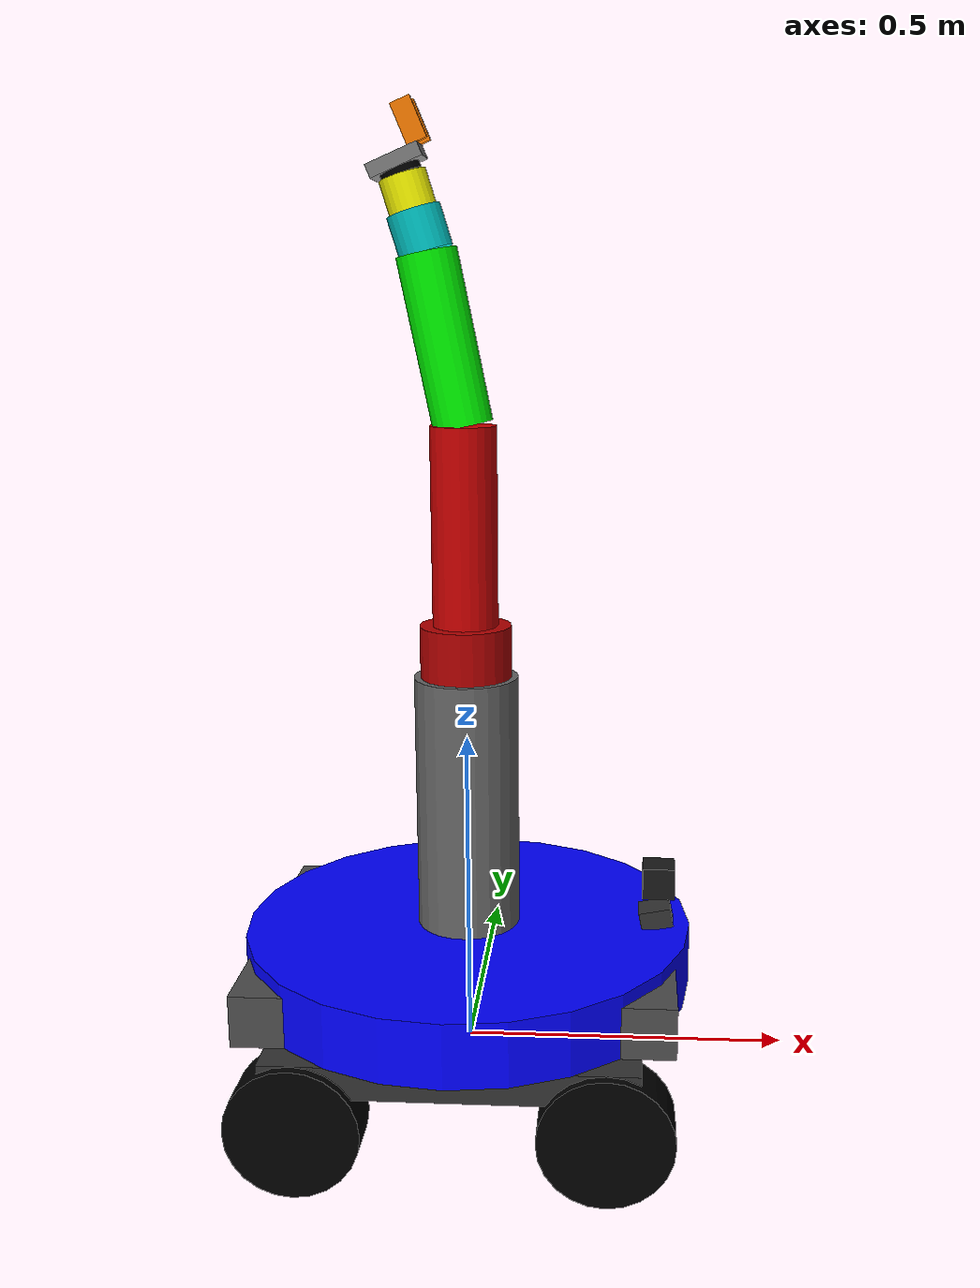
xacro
<?xml version="1.0"?>
<robot xmlns:xacro="http://ros.org/wiki/xacro" name="my_gesture_arm">
  <!-- Include the gazebo specific elements -->
  <xacro:include filename="$(find my_gesture_arm)/model/gesture_arm.gazebo" />

  <!-- Constants -->
  <xacro:property name="PI" value="3.14159"/>
  <xacro:property name="wheel_radius" value="0.1" />

  <!-- Link and Joint Macros -->
  <xacro:macro name="cylinder_link" params="name radius length xyz rpy color mass">
    <link name="${name}">
      <visual>
        <origin xyz="${xyz}" rpy="${rpy}"/>
        <geometry>
          <cylinder radius="${radius}" length="${length}"/>
        </geometry>
        <material name="">
          <color rgba="${color}"/>
        </material>
      </visual>
      <collision>
        <origin xyz="${xyz}" rpy="${rpy}"/>
        <geometry>
          <cylinder radius="${radius}" length="${length}"/>
        </geometry>
      </collision>
      <inertial>
        <origin xyz="${xyz}" rpy="${rpy}"/>
        <mass value="${mass}"/>
        <inertia
          ixx="${(1/12) * mass * (3*radius*radius + length*length)}"
          ixy="0.0"
          ixz="0.0"
          iyy="${(1/12) * mass * (3*radius*radius + length*length)}"
          iyz="0.0"
          izz="${0.5 * mass * radius * radius}"/>
      </inertial>
    </link>
  </xacro:macro>

  <xacro:macro name="box_link" params="name size xyz rpy color mass">
    <link name="${name}">
      <visual>
        <origin xyz="${xyz}" rpy="${rpy}"/>
        <geometry>
          <box size="${size}"/>
        </geometry>
        <material name="">
          <color rgba="${color}"/>
        </material>
      </visual>
      <collision>
        <origin xyz="${xyz}" rpy="${rpy}"/>
        <geometry>
          <box size="${size}"/>
        </geometry>
      </collision>
      <inertial>
        <origin xyz="${xyz}" rpy="${rpy}"/>
        <mass value="${mass}"/>
        <inertia
          ixx="${(1/12) * mass * (0.3*0.3 + 0.2*0.2)}"
          ixy="0.0"
          ixz="0.0"
          iyy="${(1/12) * mass * (0.3*0.3 + 0.2*0.2)}"
          iyz="0.0"
          izz="${(1/12) * mass * (0.3*0.3 + 0.3*0.3)}"/>
      </inertial>
    </link>
  </xacro:macro>

  <!-- Base Link -->
  <link name="base_footprint"/>

  <joint name="base_footprint_joint" type="fixed">
    <parent link="base_footprint"/>
    <child link="base_link"/>
    <origin xyz="0 0 0.1" rpy="0 0 0"/>
  </joint>

  <link name="base_link">
    <visual>
      <origin xyz="0 0 0.05" rpy="0 0 0"/>
      <geometry>
        <cylinder radius="0.35" length="0.1"/>
      </geometry>
      <material name="">
        <color rgba="0.0 0.0 1.0 1.0"/>
      </material>
    </visual>
    <collision>
      <origin xyz="0 0 0.05" rpy="0 0 0"/>
      <geometry>
        <cylinder radius="0.35" length="0.1"/>
      </geometry>
    </collision>
    <inertial>
      <origin xyz="0 0 0.05" rpy="0 0 0"/>
      <mass value="15.0"/>
      <inertia
        ixx="${(1/12) * 15.0 * (3*0.35*0.35 + 0.1*0.1)}"
        ixy="0.0"
        ixz="0.0"
        iyy="${(1/12) * 15.0 * (3*0.35*0.35 + 0.1*0.1)}"
        iyz="0.0"
        izz="${0.5 * 15.0 * 0.35 * 0.35}"/>
    </inertial>
  </link>

  <!-- Chassis -->
  <xacro:box_link name="chassis_base" size="0.65 0.5 0.08" xyz="0 0 0.04" rpy="0 0 0" color="0.3 0.3 0.3 1.0" mass="10.0"/>
  <joint name="chassis_joint" type="fixed">
    <parent link="base_link"/>
    <child link="chassis_base"/>
    <origin xyz="0 0 0" rpy="0 0 0"/>
  </joint>

  <xacro:box_link name="wheel_mount_plate" size="0.55 0.6 0.05" xyz="0 0 0.025" rpy="0 0 0" color="0.2 0.2 0.2 1.0" mass="5.0"/>
  <joint name="wheel_mount_joint" type="fixed">
    <parent link="base_link"/>
    <child link="wheel_mount_plate"/>
    <origin xyz="0 0 -0.05" rpy="0 0 0"/>
  </joint>

  <!-- Front left wheel -->
  <xacro:cylinder_link name="front_left_wheel" radius="${wheel_radius}" length="0.08" xyz="0 0 0" rpy="1.5708 0 0" color="0.0 0.0 0.0 1.0" mass="1.2"/>
  <joint name="front_left_wheel_joint" type="continuous">
    <parent link="wheel_mount_plate"/>
    <child link="front_left_wheel"/>
    <origin xyz="0.225 0.275 -0.05" rpy="0 0 0"/>
    <axis xyz="0 1 0"/>
    <dynamics damping="0.1" friction="0.1"/>
  </joint>

  <!-- Front right wheel -->
  <xacro:cylinder_link name="front_right_wheel" radius="${wheel_radius}" length="0.08" xyz="0 0 0" rpy="1.5708 0 0" color="0.0 0.0 0.0 1.0" mass="1.2"/>
  <joint name="front_right_wheel_joint" type="continuous">
    <parent link="wheel_mount_plate"/>
    <child link="front_right_wheel"/>
    <origin xyz="0.225 -0.275 -0.05" rpy="0 0 0"/>
    <axis xyz="0 1 0"/>
    <dynamics damping="0.1" friction="0.1"/>
  </joint>

  <!-- Rear left wheel -->
  <xacro:cylinder_link name="rear_left_wheel" radius="${wheel_radius}" length="0.08" xyz="0 0 0" rpy="1.5708 0 0" color="0.0 0.0 0.0 1.0" mass="1.2"/>
  <joint name="rear_left_wheel_joint" type="continuous">
    <parent link="wheel_mount_plate"/>
    <child link="rear_left_wheel"/>
    <origin xyz="-0.225 0.275 -0.05" rpy="0 0 0"/>
    <axis xyz="0 1 0"/>
    <dynamics damping="0.1" friction="0.1"/>
  </joint>

  <!-- Rear right wheel -->
  <xacro:cylinder_link name="rear_right_wheel" radius="${wheel_radius}" length="0.08" xyz="0 0 0" rpy="1.5708 0 0" color="0.0 0.0 0.0 1.0" mass="1.2"/>
  <joint name="rear_right_wheel_joint" type="continuous">
    <parent link="wheel_mount_plate"/>
    <child link="rear_right_wheel"/>
    <origin xyz="-0.225 -0.275 -0.05" rpy="0 0 0"/>
    <axis xyz="0 1 0"/>
    <dynamics damping="0.1" friction="0.1"/>
  </joint>

  <!-- LIDAR Link -->
  <xacro:box_link name="lidar_link" size="0.05 0.05 0.05" xyz="0 0 0.025" rpy="0 0 0" color="0.1 0.1 0.1 1.0" mass="0.1"/>
  <joint name="lidar_joint" type="fixed">
    <parent link="base_link"/>
    <child link="lidar_link"/>
    <origin xyz="0.3 0 0.15" rpy="0 0 0"/>
  </joint>

  <!-- Camera link -->
  <xacro:box_link name="camera_link" size="0.05 0.05 0.03" xyz="0 0 0.015" rpy="0 0 0" color="0.2 0.2 0.2 1.0" mass="0.1"/>
  <joint name="camera_joint" type="fixed">
    <parent link="base_link"/>
    <child link="camera_link"/>
    <origin xyz="0.3 0 0.1" rpy="0 -0.2 0"/>
  </joint>

  <!-- Camera optical frame -->
  <joint name="camera_optical_joint" type="fixed">
    <parent link="camera_link"/>
    <child link="camera_link_optical"/>
    <origin xyz="0.0 0.0 0.0" rpy="${-PI/2} 0.0 ${-PI/2}"/>
  </joint>

  <link name="camera_link_optical">
    <inertial>
      <mass value="0.001"/>
      <origin xyz="0 0 0" rpy="0 0 0"/>
      <inertia ixx="0.0001" ixy="0" ixz="0" iyy="0.0001" iyz="0" izz="0.0001"/>
    </inertial>
  </link>

  <!-- Robot Arm -->
  <xacro:cylinder_link name="arm_mount" radius="0.08" length="0.4" xyz="0 0 0.2" rpy="0 0 0" color="0.4 0.4 0.4 1.0" mass="6.0"/>
  <joint name="arm_mount_joint" type="fixed">
    <parent link="base_link"/>
    <child link="arm_mount"/>
    <origin xyz="0 0 0.1" rpy="0 0 0"/>
  </joint>

  <joint name="shoulder_yaw_joint" type="revolute">
    <parent link="arm_mount"/>
    <child link="shoulder_base"/>
    <origin xyz="0 0 0.4" rpy="0 0 0"/>
    <axis xyz="0 0 1"/>
    <limit lower="-3.14" upper="3.14" effort="150.0" velocity="2.0"/>
    <dynamics damping="5.0" friction="5.0"/>
  </joint>
  <xacro:cylinder_link name="shoulder_base" radius="0.07" length="0.08" xyz="0 0 0.04" rpy="0 0 0" color="0.7 0.0 0.0 1.0" mass="2.0"/>

  <joint name="shoulder_pitch_joint" type="revolute">
    <parent link="shoulder_base"/>
    <child link="upper_arm_link"/>
    <origin xyz="0 0 0.08" rpy="0 0 0"/>
    <axis xyz="0 1 0"/>
    <limit lower="-2.0" upper="2.0" effort="120.0" velocity="1.8"/>
    <dynamics damping="5.0" friction="5.0"/>
  </joint>
  <xacro:cylinder_link name="upper_arm_link" radius="0.05" length="0.3" xyz="0 0 0.15" rpy="0 0 0" color="0.8 0.0 0.0 1.0" mass="1.5"/>

  <joint name="elbow_joint" type="revolute">
    <parent link="upper_arm_link"/>
    <child link="forearm_link"/>
    <origin xyz="0 0 0.3" rpy="0 -0.2 0"/>
    <axis xyz="0 1 0"/>
    <limit lower="-2.5" upper="2.5" effort="80.0" velocity="2.0"/>
    <dynamics damping="5.0" friction="5.0"/>
  </joint>
  <xacro:cylinder_link name="forearm_link" radius="0.045" length="0.25" xyz="0 0 0.125" rpy="0 0 0" color="0.0 1.0 0.0 1.0" mass="1.0"/>

  <joint name="wrist_roll_joint" type="revolute">
    <parent link="forearm_link"/>
    <child link="wrist_roll_link"/>
    <origin xyz="0 0 0.25" rpy="0 -0.1 0"/>
    <axis xyz="1 0 0"/>
    <limit lower="-3.14" upper="3.14" effort="40.0" velocity="3.0"/>
    <dynamics damping="5.0" friction="5.0"/>
  </joint>
  <xacro:cylinder_link name="wrist_roll_link" radius="0.04" length="0.06" xyz="0 0 0.03" rpy="0 0 0" color="0.0 0.8 0.8 1.0" mass="0.4"/>

  <joint name="wrist_pitch_joint" type="revolute">
    <parent link="wrist_roll_link"/>
    <child link="wrist_pitch_link"/>
    <origin xyz="0 0 0.06" rpy="0 0 0"/>
    <axis xyz="0 1 0"/>
    <limit lower="-1.57" upper="1.57" effort="30.0" velocity="3.0"/>
    <dynamics damping="5.0" friction="5.0"/>
  </joint>
  <xacro:cylinder_link name="wrist_pitch_link" radius="0.035" length="0.05" xyz="0 0 0.025" rpy="0 0 0" color="1.0 1.0 0.0 1.0" mass="0.3"/>

  <joint name="end_effector_joint" type="fixed">
    <parent link="wrist_pitch_link"/>
    <child link="end_effector"/>
    <origin xyz="0 0 0.05" rpy="0 -0.1 0"/>
  </joint>
  <xacro:cylinder_link name="end_effector" radius="0.03" length="0.02" xyz="0 0 0.01" rpy="0 0 0" color="0.0 0.0 0.0 1.0" mass="0.2"/>

  <joint name="gripper_base_joint" type="fixed">
    <parent link="end_effector"/>
    <child link="gripper_base"/>
    <origin xyz="0 0 0.02" rpy="0 0 0"/>
  </joint>
  <xacro:box_link name="gripper_base" size="0.08 0.06 0.02" xyz="0 0 0" rpy="0 0 0" color="0.5 0.5 0.5 1.0" mass="0.2"/>

  <!-- Left finger -->
  <joint name="left_finger_joint" type="prismatic">
    <parent link="gripper_base"/>
    <child link="left_finger"/>
    <origin xyz="0.04 0.02 0.01" rpy="0 0 0"/>
    <axis xyz="0 1 0"/>
    <limit lower="0.0" upper="0.03" effort="15.0" velocity="0.5"/>
    <dynamics damping="0.1" friction="0.05"/>
  </joint>
  <xacro:box_link name="left_finger" size="0.03 0.01 0.06" xyz="0 0 0.03" rpy="0 0 0" color="1.0 0.5 0.0 1.0" mass="0.05"/>

  <!-- Right finger -->
  <joint name="right_finger_joint" type="prismatic">
    <parent link="gripper_base"/>
    <child link="right_finger"/>
    <origin xyz="0.04 -0.02 0.01" rpy="0 0 0"/>
    <axis xyz="0 -1 0"/>
    <limit lower="0.0" upper="0.03" effort="15.0" velocity="0.5"/>
    <dynamics damping="0.1" friction="0.05"/>
    <mimic joint="left_finger_joint" multiplier="1" offset="0"/>
  </joint>
  <xacro:box_link name="right_finger" size="0.03 0.01 0.06" xyz="0 0 0.03" rpy="0 0 0" color="1.0 0.5 0.0 1.0" mass="0.05"/>

  <!-- ROS2 Control Hardware Interface -->
  <ros2_control name="GazeboSystem" type="system">
    <hardware>
      <plugin name="gazebo_ros2_control/GazeboSystem"/>
    </hardware>
    <joint name="shoulder_yaw_joint">
      <command_interface name="position"/>
      <state_interface name="position"/>
      <state_interface name="velocity"/>
      <state_interface name="effort"/>
    </joint>
    <joint name="shoulder_pitch_joint">
      <command_interface name="position"/>
      <state_interface name="position"/>
      <state_interface name="velocity"/>
      <state_interface name="effort"/>
    </joint>
    <joint name="elbow_joint">
      <command_interface name="position"/>
      <state_interface name="position"/>
      <state_interface name="velocity"/>
      <state_interface name="effort"/>
    </joint>
    <joint name="wrist_roll_joint">
      <command_interface name="position"/>
      <state_interface name="position"/>
      <state_interface name="velocity"/>
      <state_interface name="effort"/>
    </joint>
    <joint name="wrist_pitch_joint">
      <command_interface name="position"/>
      <state_interface name="position"/>
      <state_interface name="velocity"/>
      <state_interface name="effort"/>
    </joint>
    <joint name="left_finger_joint">
      <command_interface name="position"/>
      <state_interface name="position"/>
      <state_interface name="velocity"/>
      <state_interface name="effort"/>
    </joint>
    <joint name="right_finger_joint">
      <command_interface name="position"/>
      <state_interface name="position"/>
      <state_interface name="velocity"/>
      <state_interface name="effort"/>
    </joint>
  </ros2_control>
</robot>
